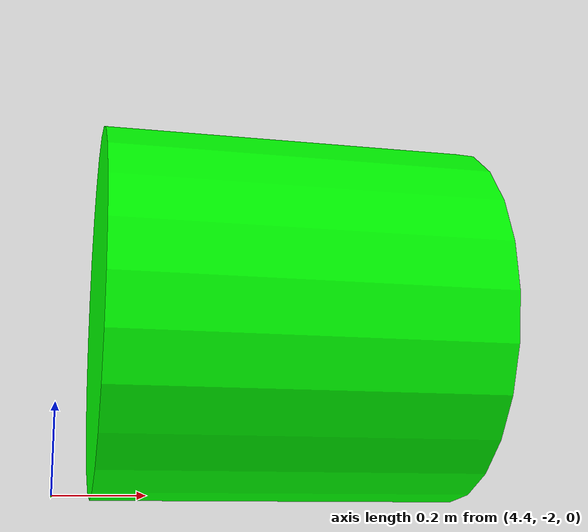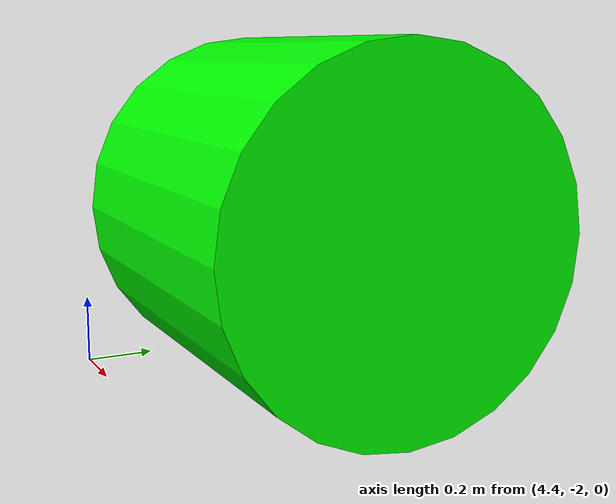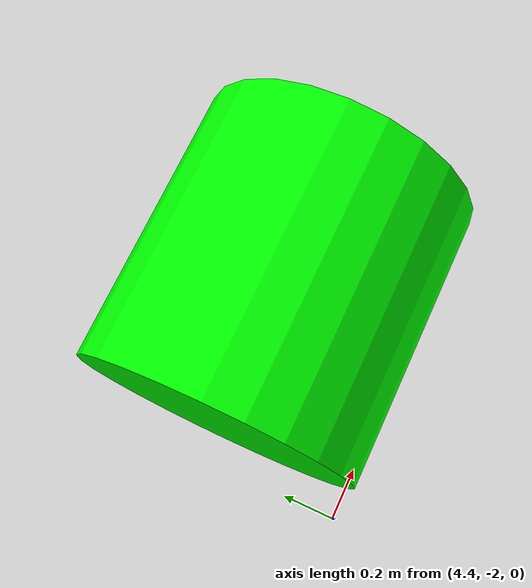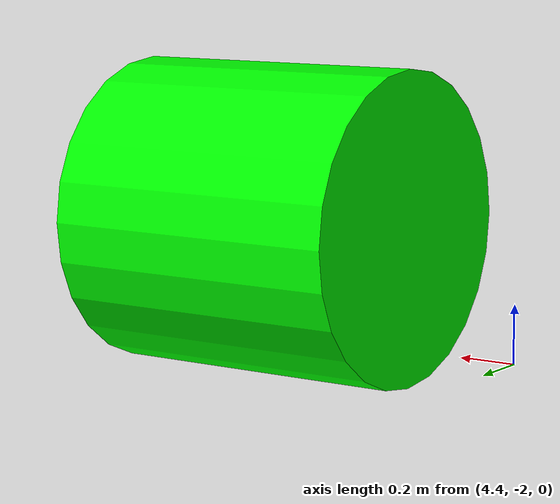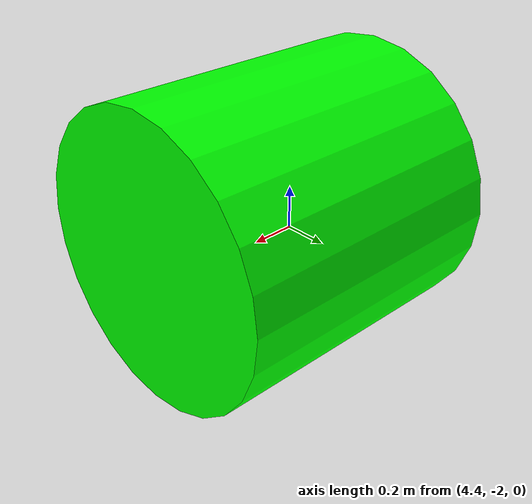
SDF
<?xml version="1.0" ?>
<sdf version="1.6">
  <model name="cylinder">
    <pose>5 -1.5 0.5 0 1.5707 0</pose>
    <link name="link">
      <collision name="collision">
        <geometry>
          <cylinder>
            <radius>0.5</radius>
            <length>1.0</length>
          </cylinder>
        </geometry>
      </collision>
      <visual name="visual">
        <geometry>
          <cylinder>
            <radius>0.5</radius>
            <length>1.0</length>
          </cylinder>
        </geometry>
        <material>
          <ambient>0 1 0 1</ambient>
          <diffuse>0 1 0 1</diffuse>
        </material>
      </visual>
    </link>
  </model>
</sdf>
